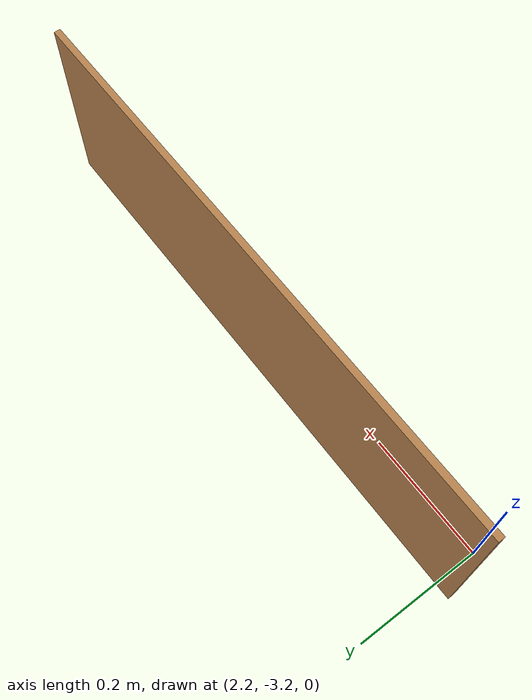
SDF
<?xml version='1.0'?>
<sdf version='1.7'>
  <model name='pared90'>
    <pose>1.5375 -1.5705 0 0 -0 0</pose>
    <link name='Wall_12'>
      <collision name='Wall_12_Collision'>
        <geometry>
          <box>
            <size>0.9 0.01 0.3</size>
          </box>
        </geometry>
        <pose>0 0 0.15 0 -0 0</pose>
      </collision>
      <visual name='Wall_12_Visual'>
        <pose>0 0 0.15 0 -0 0</pose>
        <geometry>
          <box>
            <size>0.9 0.01 0.3</size>
          </box>
        </geometry>
        <material>
          <script>
            <uri>file://media/materials/scripts/gazebo.material</uri>
            <name>Gazebo/Wood</name>
          </script>
          <ambient>1 1 1 1</ambient>
        </material>
        <meta>
          <layer>0</layer>
        </meta>
      </visual>
      <pose>1.0875 -1.5655 0 0 -0 0</pose>
    </link>
    <static>1</static>
  </model>
</sdf>
